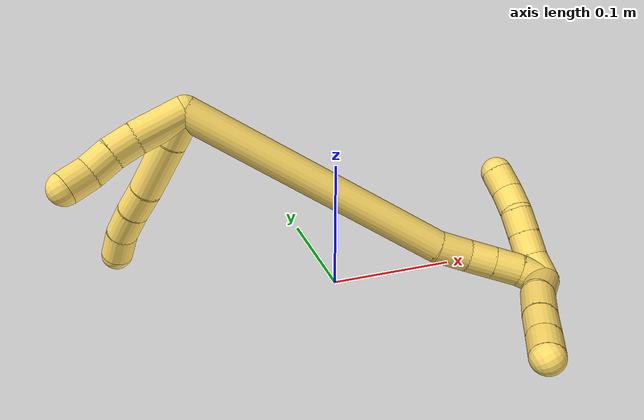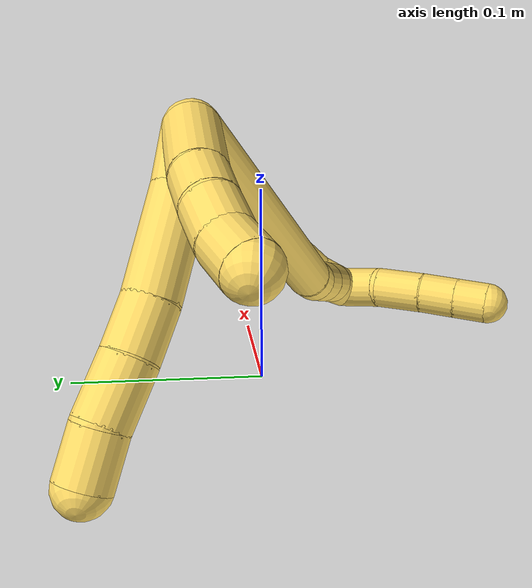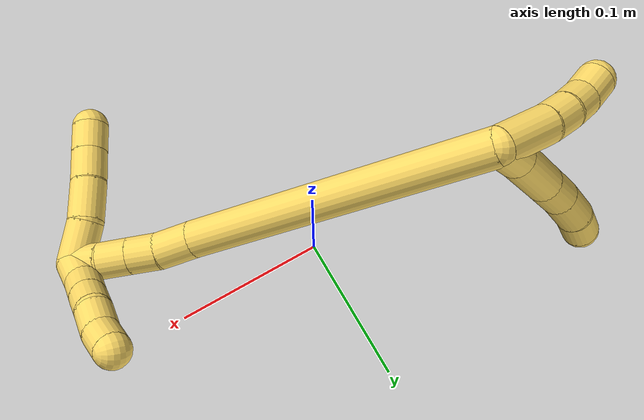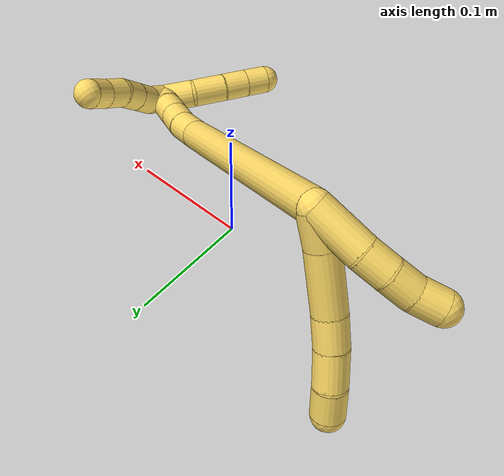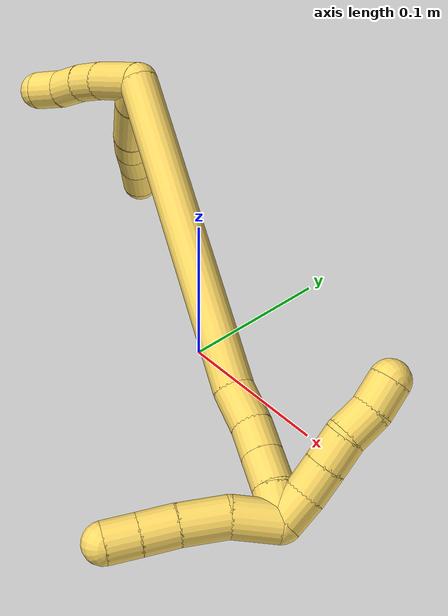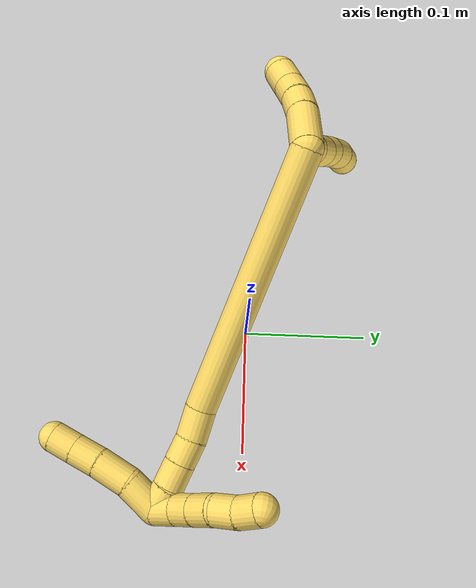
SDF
<sdf version="1.7">
 <world name="default">
  <model name="photoneo_s_sensor">
   <static>1</static>
   <pose>0 0 2 1.57079 1.57079 3.14159</pose>
   <link name="link">
    <inertial><mass>0.1</mass></inertial>
    <sensor name="sensor" type="depth">
     <update_rate>30</update_rate>
     <camera>
      <horizontal_fov>1.22</horizontal_fov>
      <image><width>1920</width><height>1200</height><format>B8G8R8</format></image>
      <clip><near>0.1</near><far>4</far></clip>
      <depth_camera><output>points</output></depth_camera>
     </camera>
     <plugin name="camera_plugin" filename="libgazebo_ros_depth_camera.so">
      <baseline>0.2</baseline>
      <alwaysOn>1</alwaysOn>
      <updateRate>0.0</updateRate>
      <cameraName>camera_ir</cameraName>
      <imageTopicName>/camera/color/image_raw</imageTopicName>
      <cameraInfoTopicName>/camera/color/camera_info</cameraInfoTopicName>
      <depthImageTopicName>/camera/depth/image_raw</depthImageTopicName>
      <depthImageCameraInfoTopicName>/camera/depth/camera_info</depthImageCameraInfoTopicName>
      <pointCloudTopicName>/camera/depth/points</pointCloudTopicName>
      <frameName>fr_optical</frameName>
      <pointCloudCutoff>0.1</pointCloudCutoff>
      <pointCloudCutoffMax>2.0</pointCloudCutoffMax>
      <distortionK1>0</distortionK1>
      <distortionK2>0</distortionK2>
      <distortionK3>0</distortionK3>
      <distortionT1>0</distortionT1>
      <distortionT2>0</distortionT2>
      <CxPrime>0</CxPrime>
      <Cx>0</Cx>
      <Cy>0</Cy>
      <focalLength>0</focalLength>
      <hackBaseline>0</hackBaseline>
     </plugin>
    </sensor>
   </link>
  </model>
  <model name="bin">
   <static>1</static>
   <link name="bottom">
    <collision name="collision-bottom">
     <pose>0 0 -0.01 0 -0 0</pose>
     <geometry><box><size>0.8 0.6 0.02</size></box></geometry>
     <surface>
      <friction><ode><mu>100</mu><mu2>100</mu2></ode></friction>
      <contact><collide_bitmask>65535</collide_bitmask></contact>
     </surface>
    </collision>
   </link>
   <link name="west_wall">
    <collision name="collision-west_wall">
     <pose>-0.41 0 0.1 0 -0 0</pose>
     <geometry><box><size>0.02 0.6 0.2</size></box></geometry>
     <surface>
      <friction><ode><mu>100</mu><mu2>100</mu2></ode></friction>
      <contact><collide_bitmask>65535</collide_bitmask></contact>
     </surface>
    </collision>
   </link>
   <link name="east_wall">
    <collision name="collision-east_wall">
     <pose>0.41 0 0.1 0 -0 0</pose>
     <geometry><box><size>0.02 0.6 0.2</size></box></geometry>
     <surface>
      <friction><ode><mu>100</mu><mu2>100</mu2></ode></friction>
      <contact><collide_bitmask>65535</collide_bitmask></contact>
     </surface>
    </collision>
   </link>
   <link name="south_wall">
    <collision name="collision-south_wall">
     <pose>0 -0.31 0.1 0 -0 0</pose>
     <geometry><box><size>0.8 0.02 0.2</size></box></geometry>
     <surface>
      <friction><ode><mu>100</mu><mu2>100</mu2></ode></friction>
      <contact><collide_bitmask>65535</collide_bitmask></contact>
     </surface>
    </collision>
   </link>
   <link name="north_wall">
    <collision name="collision-north_wall">
     <pose>0 0.31 0.1 0 -0 0</pose>
     <geometry><box><size>0.8 0.02 0.2</size></box></geometry>
     <surface>
      <friction><ode><mu>100</mu><mu2>100</mu2></ode></friction>
      <contact><collide_bitmask>65535</collide_bitmask></contact>
     </surface>
    </collision>
   </link>
  </model>
  <model name="5">
   <static>0</static>
   <link name="5">
    <collision name="collision-cylinder-e_1_2_8">
     <pose>0.006565 0.002974 -0.011233 -2.8828 0.514284 -2.22257</pose>
     <geometry><cylinder><radius>0.0125</radius><length>0.026692</length></cylinder></geometry>
     <surface>
      <friction><ode><mu>1.16</mu><mu2>1.16</mu2><slip1>0</slip1><slip2>0</slip2></ode></friction>
      <contact><ode><kp>1e+06</kp><kd>1</kd><max_vel>0</max_vel><min_depth>0.001</min_depth></ode></contact>
     </surface>
    </collision>
    <visual name="visual-cylinder-e_1_2_8">
     <pose>0.006565 0.002974 -0.011233 -2.8828 0.514284 -2.22257</pose>
     <geometry><cylinder><radius>0.0125</radius><length>0.026692</length></cylinder></geometry>
     <material><ambient>1 0.858824 0.4 1</ambient></material>
    </visual>
    <collision name="collision-cylinder-e_2_8_9">
     <pose>0.02446 0.013088 -0.041926 -2.78993 0.500207 -1.92619</pose>
     <geometry><cylinder><radius>0.0125</radius><length>0.047245</length></cylinder></geometry>
     <surface>
      <friction><ode><mu>1.16</mu><mu2>1.16</mu2><slip1>0</slip1><slip2>0</slip2></ode></friction>
      <contact><ode><kp>1e+06</kp><kd>1</kd><max_vel>0</max_vel><min_depth>0.001</min_depth></ode></contact>
     </surface>
    </collision>
    <visual name="visual-cylinder-e_2_8_9">
     <pose>0.02446 0.013088 -0.041926 -2.78993 0.500207 -1.92619</pose>
     <geometry><cylinder><radius>0.0125</radius><length>0.047245</length></cylinder></geometry>
     <material><ambient>1 0.858824 0.4 1</ambient></material>
    </visual>
    <collision name="collision-cylinder-e_3_9_10">
     <pose>0.040838 0.024798 -0.071389 -2.71307 0.430356 -1.57519</pose>
     <geometry><cylinder><radius>0.0125</radius><length>0.024203</length></cylinder></geometry>
     <surface>
      <friction><ode><mu>1.16</mu><mu2>1.16</mu2><slip1>0</slip1><slip2>0</slip2></ode></friction>
      <contact><ode><kp>1e+06</kp><kd>1</kd><max_vel>0</max_vel><min_depth>0.001</min_depth></ode></contact>
     </surface>
    </collision>
    <visual name="visual-cylinder-e_3_9_10">
     <pose>0.040838 0.024798 -0.071389 -2.71307 0.430356 -1.57519</pose>
     <geometry><cylinder><radius>0.0125</radius><length>0.024203</length></cylinder></geometry>
     <material><ambient>1 0.858824 0.4 1</ambient></material>
    </visual>
    <collision name="collision-cylinder-e_4_10_11">
     <pose>0.052169 0.035597 -0.092289 -2.62223 0.464067 -1.45382</pose>
     <geometry><cylinder><radius>0.0125</radius><length>0.028071</length></cylinder></geometry>
     <surface>
      <friction><ode><mu>1.16</mu><mu2>1.16</mu2><slip1>0</slip1><slip2>0</slip2></ode></friction>
      <contact><ode><kp>1e+06</kp><kd>1</kd><max_vel>0</max_vel><min_depth>0.001</min_depth></ode></contact>
     </surface>
    </collision>
    <visual name="visual-cylinder-e_4_10_11">
     <pose>0.052169 0.035597 -0.092289 -2.62223 0.464067 -1.45382</pose>
     <geometry><cylinder><radius>0.0125</radius><length>0.028071</length></cylinder></geometry>
     <material><ambient>1 0.858824 0.4 1</ambient></material>
    </visual>
    <collision name="collision-cylinder-e_5_11_6">
     <pose>0.065555 0.046489 -0.111507 -2.63092 0.640092 -1.80735</pose>
     <geometry><cylinder><radius>0.0125</radius><length>0.023789</length></cylinder></geometry>
     <surface>
      <friction><ode><mu>1.16</mu><mu2>1.16</mu2><slip1>0</slip1><slip2>0</slip2></ode></friction>
      <contact><ode><kp>1e+06</kp><kd>1</kd><max_vel>0</max_vel><min_depth>0.001</min_depth></ode></contact>
     </surface>
    </collision>
    <visual name="visual-cylinder-e_5_11_6">
     <pose>0.065555 0.046489 -0.111507 -2.63092 0.640092 -1.80735</pose>
     <geometry><cylinder><radius>0.0125</radius><length>0.023789</length></cylinder></geometry>
     <material><ambient>1 0.858824 0.4 1</ambient></material>
    </visual>
    <collision name="collision-cylinder-e_1_2_12">
     <pose>-0.001201 -0.004311 -0.019173 2.92044 -0.061046 -0.536723</pose>
     <geometry><cylinder><radius>0.0125</radius><length>0.039376</length></cylinder></geometry>
     <surface>
      <friction><ode><mu>1.16</mu><mu2>1.16</mu2><slip1>0</slip1><slip2>0</slip2></ode></friction>
      <contact><ode><kp>1e+06</kp><kd>1</kd><max_vel>0</max_vel><min_depth>0.001</min_depth></ode></contact>
     </surface>
    </collision>
    <visual name="visual-cylinder-e_1_2_12">
     <pose>-0.001201 -0.004311 -0.019173 2.92044 -0.061046 -0.536723</pose>
     <geometry><cylinder><radius>0.0125</radius><length>0.039376</length></cylinder></geometry>
     <material><ambient>1 0.858824 0.4 1</ambient></material>
    </visual>
    <collision name="collision-cylinder-e_2_12_13">
     <pose>-0.002191 -0.011852 -0.047995 2.81849 0.020762 0.127226</pose>
     <geometry><cylinder><radius>0.0125</radius><length>0.020357</length></cylinder></geometry>
     <surface>
      <friction><ode><mu>1.16</mu><mu2>1.16</mu2><slip1>0</slip1><slip2>0</slip2></ode></friction>
      <contact><ode><kp>1e+06</kp><kd>1</kd><max_vel>0</max_vel><min_depth>0.001</min_depth></ode></contact>
     </surface>
    </collision>
    <visual name="visual-cylinder-e_2_12_13">
     <pose>-0.002191 -0.011852 -0.047995 2.81849 0.020762 0.127226</pose>
     <geometry><cylinder><radius>0.0125</radius><length>0.020357</length></cylinder></geometry>
     <material><ambient>1 0.858824 0.4 1</ambient></material>
    </visual>
    <collision name="collision-cylinder-e_3_13_14">
     <pose>-0.000424 -0.018725 -0.066905 2.76694 0.155129 0.77824</pose>
     <geometry><cylinder><radius>0.0125</radius><length>0.020142</length></cylinder></geometry>
     <surface>
      <friction><ode><mu>1.16</mu><mu2>1.16</mu2><slip1>0</slip1><slip2>0</slip2></ode></friction>
      <contact><ode><kp>1e+06</kp><kd>1</kd><max_vel>0</max_vel><min_depth>0.001</min_depth></ode></contact>
     </surface>
    </collision>
    <visual name="visual-cylinder-e_3_13_14">
     <pose>-0.000424 -0.018725 -0.066905 2.76694 0.155129 0.77824</pose>
     <geometry><cylinder><radius>0.0125</radius><length>0.020142</length></cylinder></geometry>
     <material><ambient>1 0.858824 0.4 1</ambient></material>
    </visual>
    <collision name="collision-cylinder-e_4_14_5">
     <pose>0.0012 -0.027573 -0.084775 2.59765 0.006753 0.024214</pose>
     <geometry><cylinder><radius>0.0125</radius><length>0.020125</length></cylinder></geometry>
     <surface>
      <friction><ode><mu>1.16</mu><mu2>1.16</mu2><slip1>0</slip1><slip2>0</slip2></ode></friction>
      <contact><ode><kp>1e+06</kp><kd>1</kd><max_vel>0</max_vel><min_depth>0.001</min_depth></ode></contact>
     </surface>
    </collision>
    <visual name="visual-cylinder-e_4_14_5">
     <pose>0.0012 -0.027573 -0.084775 2.59765 0.006753 0.024214</pose>
     <geometry><cylinder><radius>0.0125</radius><length>0.020125</length></cylinder></geometry>
     <material><ambient>1 0.858824 0.4 1</ambient></material>
    </visual>
    <collision name="collision-cylinder-e_1_2_15">
     <pose>0.091143 -0.000939 0.054834 0.017114 1.02912 0.009676</pose>
     <geometry><cylinder><radius>0.0125</radius><length>0.21274</length></cylinder></geometry>
     <surface>
      <friction><ode><mu>1.16</mu><mu2>1.16</mu2><slip1>0</slip1><slip2>0</slip2></ode></friction>
      <contact><ode><kp>1e+06</kp><kd>1</kd><max_vel>0</max_vel><min_depth>0.001</min_depth></ode></contact>
     </surface>
    </collision>
    <visual name="visual-cylinder-e_1_2_15">
     <pose>0.091143 -0.000939 0.054834 0.017114 1.02912 0.009676</pose>
     <geometry><cylinder><radius>0.0125</radius><length>0.21274</length></cylinder></geometry>
     <material><ambient>1 0.858824 0.4 1</ambient></material>
    </visual>
    <collision name="collision-cylinder-e_2_15_16">
     <pose>0.191734 -0.001197 0.1181 -0.080516 0.840605 -0.036001</pose>
     <geometry><cylinder><radius>0.0125</radius><length>0.025365</length></cylinder></geometry>
     <surface>
      <friction><ode><mu>1.16</mu><mu2>1.16</mu2><slip1>0</slip1><slip2>0</slip2></ode></friction>
      <contact><ode><kp>1e+06</kp><kd>1</kd><max_vel>0</max_vel><min_depth>0.001</min_depth></ode></contact>
     </surface>
    </collision>
    <visual name="visual-cylinder-e_2_15_16">
     <pose>0.191734 -0.001197 0.1181 -0.080516 0.840605 -0.036001</pose>
     <geometry><cylinder><radius>0.0125</radius><length>0.025365</length></cylinder></geometry>
     <material><ambient>1 0.858824 0.4 1</ambient></material>
    </visual>
    <collision name="collision-cylinder-e_3_16_17">
     <pose>0.208449 -0.001518 0.133647 0.139853 0.790874 0.058457</pose>
     <geometry><cylinder><radius>0.0125</radius><length>0.020437</length></cylinder></geometry>
     <surface>
      <friction><ode><mu>1.16</mu><mu2>1.16</mu2><slip1>0</slip1><slip2>0</slip2></ode></friction>
      <contact><ode><kp>1e+06</kp><kd>1</kd><max_vel>0</max_vel><min_depth>0.001</min_depth></ode></contact>
     </surface>
    </collision>
    <visual name="visual-cylinder-e_3_16_17">
     <pose>0.208449 -0.001518 0.133647 0.139853 0.790874 0.058457</pose>
     <geometry><cylinder><radius>0.0125</radius><length>0.020437</length></cylinder></geometry>
     <material><ambient>1 0.858824 0.4 1</ambient></material>
    </visual>
    <collision name="collision-cylinder-e_4_17_18">
     <pose>0.223162 -0.003511 0.148104 0.134212 0.788135 0.055877</pose>
     <geometry><cylinder><radius>0.0125</radius><length>0.021009</length></cylinder></geometry>
     <surface>
      <friction><ode><mu>1.16</mu><mu2>1.16</mu2><slip1>0</slip1><slip2>0</slip2></ode></friction>
      <contact><ode><kp>1e+06</kp><kd>1</kd><max_vel>0</max_vel><min_depth>0.001</min_depth></ode></contact>
     </surface>
    </collision>
    <visual name="visual-cylinder-e_4_17_18">
     <pose>0.223162 -0.003511 0.148104 0.134212 0.788135 0.055877</pose>
     <geometry><cylinder><radius>0.0125</radius><length>0.021009</length></cylinder></geometry>
     <material><ambient>1 0.858824 0.4 1</ambient></material>
    </visual>
    <collision name="collision-cylinder-e_5_18_1">
     <pose>0.23863 -0.006118 0.161577 0.257619 0.901731 0.12525</pose>
     <geometry><cylinder><radius>0.0125</radius><length>0.020448</length></cylinder></geometry>
     <surface>
      <friction><ode><mu>1.16</mu><mu2>1.16</mu2><slip1>0</slip1><slip2>0</slip2></ode></friction>
      <contact><ode><kp>1e+06</kp><kd>1</kd><max_vel>0</max_vel><min_depth>0.001</min_depth></ode></contact>
     </surface>
    </collision>
    <visual name="visual-cylinder-e_5_18_1">
     <pose>0.23863 -0.006118 0.161577 0.257619 0.901731 0.12525</pose>
     <geometry><cylinder><radius>0.0125</radius><length>0.020448</length></cylinder></geometry>
     <material><ambient>1 0.858824 0.4 1</ambient></material>
    </visual>
    <collision name="collision-cylinder-e_1_1_19">
     <pose>0.243999 -0.02072 0.161938 1.98899 -0.184384 -0.282623</pose>
     <geometry><cylinder><radius>0.0125</radius><length>0.028912</length></cylinder></geometry>
     <surface>
      <friction><ode><mu>1.16</mu><mu2>1.16</mu2><slip1>0</slip1><slip2>0</slip2></ode></friction>
      <contact><ode><kp>1e+06</kp><kd>1</kd><max_vel>0</max_vel><min_depth>0.001</min_depth></ode></contact>
     </surface>
    </collision>
    <visual name="visual-cylinder-e_1_1_19">
     <pose>0.243999 -0.02072 0.161938 1.98899 -0.184384 -0.282623</pose>
     <geometry><cylinder><radius>0.0125</radius><length>0.028912</length></cylinder></geometry>
     <material><ambient>1 0.858824 0.4 1</ambient></material>
    </visual>
    <collision name="collision-cylinder-e_2_19_20">
     <pose>0.242236 -0.047428 0.151535 1.89633 0.061175 0.085191</pose>
     <geometry><cylinder><radius>0.0125</radius><length>0.029019</length></cylinder></geometry>
     <surface>
      <friction><ode><mu>1.16</mu><mu2>1.16</mu2><slip1>0</slip1><slip2>0</slip2></ode></friction>
      <contact><ode><kp>1e+06</kp><kd>1</kd><max_vel>0</max_vel><min_depth>0.001</min_depth></ode></contact>
     </surface>
    </collision>
    <visual name="visual-cylinder-e_2_19_20">
     <pose>0.242236 -0.047428 0.151535 1.89633 0.061175 0.085191</pose>
     <geometry><cylinder><radius>0.0125</radius><length>0.029019</length></cylinder></geometry>
     <material><ambient>1 0.858824 0.4 1</ambient></material>
    </visual>
    <collision name="collision-cylinder-e_3_20_21">
     <pose>0.244582 -0.071528 0.143692 1.87091 0.133528 0.180873</pose>
     <geometry><cylinder><radius>0.0125</radius><length>0.021922</length></cylinder></geometry>
     <surface>
      <friction><ode><mu>1.16</mu><mu2>1.16</mu2><slip1>0</slip1><slip2>0</slip2></ode></friction>
      <contact><ode><kp>1e+06</kp><kd>1</kd><max_vel>0</max_vel><min_depth>0.001</min_depth></ode></contact>
     </surface>
    </collision>
    <visual name="visual-cylinder-e_3_20_21">
     <pose>0.244582 -0.071528 0.143692 1.87091 0.133528 0.180873</pose>
     <geometry><cylinder><radius>0.0125</radius><length>0.021922</length></cylinder></geometry>
     <material><ambient>1 0.858824 0.4 1</ambient></material>
    </visual>
    <collision name="collision-cylinder-e_4_21_4">
     <pose>0.247309 -0.091434 0.137467 1.87717 0.126138 0.172004</pose>
     <geometry><cylinder><radius>0.0125</radius><length>0.020147</length></cylinder></geometry>
     <surface>
      <friction><ode><mu>1.16</mu><mu2>1.16</mu2><slip1>0</slip1><slip2>0</slip2></ode></friction>
      <contact><ode><kp>1e+06</kp><kd>1</kd><max_vel>0</max_vel><min_depth>0.001</min_depth></ode></contact>
     </surface>
    </collision>
    <visual name="visual-cylinder-e_4_21_4">
     <pose>0.247309 -0.091434 0.137467 1.87717 0.126138 0.172004</pose>
     <geometry><cylinder><radius>0.0125</radius><length>0.020147</length></cylinder></geometry>
     <material><ambient>1 0.858824 0.4 1</ambient></material>
    </visual>
    <collision name="collision-cylinder-e_1_1_22">
     <pose>0.239905 -0.000434 0.168818 -1.42009 -0.740188 0.643806</pose>
     <geometry><cylinder><radius>0.0125</radius><length>0.02</length></cylinder></geometry>
     <surface>
      <friction><ode><mu>1.16</mu><mu2>1.16</mu2><slip1>0</slip1><slip2>0</slip2></ode></friction>
      <contact><ode><kp>1e+06</kp><kd>1</kd><max_vel>0</max_vel><min_depth>0.001</min_depth></ode></contact>
     </surface>
    </collision>
    <visual name="visual-cylinder-e_1_1_22">
     <pose>0.239905 -0.000434 0.168818 -1.42009 -0.740188 0.643806</pose>
     <geometry><cylinder><radius>0.0125</radius><length>0.02</length></cylinder></geometry>
     <material><ambient>1 0.858824 0.4 1</ambient></material>
    </visual>
    <collision name="collision-cylinder-e_2_22_23">
     <pose>0.225303 0.012538 0.172391 -1.16097 -0.904025 0.616587</pose>
     <geometry><cylinder><radius>0.0125</radius><length>0.02</length></cylinder></geometry>
     <surface>
      <friction><ode><mu>1.16</mu><mu2>1.16</mu2><slip1>0</slip1><slip2>0</slip2></ode></friction>
      <contact><ode><kp>1e+06</kp><kd>1</kd><max_vel>0</max_vel><min_depth>0.001</min_depth></ode></contact>
     </surface>
    </collision>
    <visual name="visual-cylinder-e_2_22_23">
     <pose>0.225303 0.012538 0.172391 -1.16097 -0.904025 0.616587</pose>
     <geometry><cylinder><radius>0.0125</radius><length>0.02</length></cylinder></geometry>
     <material><ambient>1 0.858824 0.4 1</ambient></material>
    </visual>
    <collision name="collision-cylinder-e_3_23_24">
     <pose>0.20947 0.023791 0.17715 -1.18056 -0.923024 0.64325</pose>
     <geometry><cylinder><radius>0.0125</radius><length>0.02</length></cylinder></geometry>
     <surface>
      <friction><ode><mu>1.16</mu><mu2>1.16</mu2><slip1>0</slip1><slip2>0</slip2></ode></friction>
      <contact><ode><kp>1e+06</kp><kd>1</kd><max_vel>0</max_vel><min_depth>0.001</min_depth></ode></contact>
     </surface>
    </collision>
    <visual name="visual-cylinder-e_3_23_24">
     <pose>0.20947 0.023791 0.17715 -1.18056 -0.923024 0.64325</pose>
     <geometry><cylinder><radius>0.0125</radius><length>0.02</length></cylinder></geometry>
     <material><ambient>1 0.858824 0.4 1</ambient></material>
    </visual>
    <collision name="collision-cylinder-e_4_24_25">
     <pose>0.195321 0.037063 0.181092 -1.35991 -0.665615 0.545091</pose>
     <geometry><cylinder><radius>0.0125</radius><length>0.02</length></cylinder></geometry>
     <surface>
      <friction><ode><mu>1.16</mu><mu2>1.16</mu2><slip1>0</slip1><slip2>0</slip2></ode></friction>
      <contact><ode><kp>1e+06</kp><kd>1</kd><max_vel>0</max_vel><min_depth>0.001</min_depth></ode></contact>
     </surface>
    </collision>
    <visual name="visual-cylinder-e_4_24_25">
     <pose>0.195321 0.037063 0.181092 -1.35991 -0.665615 0.545091</pose>
     <geometry><cylinder><radius>0.0125</radius><length>0.02</length></cylinder></geometry>
     <material><ambient>1 0.858824 0.4 1</ambient></material>
    </visual>
    <collision name="collision-cylinder-e_5_25_3">
     <pose>0.181306 0.050914 0.183514 -1.44567 -0.900943 0.806471</pose>
     <geometry><cylinder><radius>0.0125</radius><length>0.02</length></cylinder></geometry>
     <surface>
      <friction><ode><mu>1.16</mu><mu2>1.16</mu2><slip1>0</slip1><slip2>0</slip2></ode></friction>
      <contact><ode><kp>1e+06</kp><kd>1</kd><max_vel>0</max_vel><min_depth>0.001</min_depth></ode></contact>
     </surface>
    </collision>
    <visual name="visual-cylinder-e_5_25_3">
     <pose>0.181306 0.050914 0.183514 -1.44567 -0.900943 0.806471</pose>
     <geometry><cylinder><radius>0.0125</radius><length>0.02</length></cylinder></geometry>
     <material><ambient>1 0.858824 0.4 1</ambient></material>
    </visual>
    <collision name="collision-sphere-3">
     <pose>0.173467 0.057074 0.184288 0 -0 0</pose>
     <geometry><sphere><radius>0.0125</radius></sphere></geometry>
     <surface>
      <friction><ode><mu>1.16</mu><mu2>1.16</mu2><slip1>0</slip1><slip2>0</slip2></ode></friction>
      <contact><ode><kp>1e+06</kp><kd>1</kd><max_vel>0</max_vel><min_depth>0.001</min_depth></ode></contact>
     </surface>
    </collision>
    <visual name="visual-sphere-3">
     <pose>0.173467 0.057074 0.184288 0 -0 0</pose>
     <geometry><sphere><radius>0.0125</radius></sphere></geometry>
     <material><ambient>1 0.858824 0.4 1</ambient></material>
    </visual>
    <collision name="collision-sphere-25">
     <pose>0.189145 0.044754 0.182739 0 -0 0</pose>
     <geometry><sphere><radius>0.0125</radius></sphere></geometry>
     <surface>
      <friction><ode><mu>1.16</mu><mu2>1.16</mu2><slip1>0</slip1><slip2>0</slip2></ode></friction>
      <contact><ode><kp>1e+06</kp><kd>1</kd><max_vel>0</max_vel><min_depth>0.001</min_depth></ode></contact>
     </surface>
    </collision>
    <visual name="visual-sphere-25">
     <pose>0.189145 0.044754 0.182739 0 -0 0</pose>
     <geometry><sphere><radius>0.0125</radius></sphere></geometry>
     <material><ambient>1 0.858824 0.4 1</ambient></material>
    </visual>
    <collision name="collision-sphere-24">
     <pose>0.201496 0.029372 0.179446 0 -0 0</pose>
     <geometry><sphere><radius>0.0125</radius></sphere></geometry>
     <surface>
      <friction><ode><mu>1.16</mu><mu2>1.16</mu2><slip1>0</slip1><slip2>0</slip2></ode></friction>
      <contact><ode><kp>1e+06</kp><kd>1</kd><max_vel>0</max_vel><min_depth>0.001</min_depth></ode></contact>
     </surface>
    </collision>
    <visual name="visual-sphere-24">
     <pose>0.201496 0.029372 0.179446 0 -0 0</pose>
     <geometry><sphere><radius>0.0125</radius></sphere></geometry>
     <material><ambient>1 0.858824 0.4 1</ambient></material>
    </visual>
    <collision name="collision-sphere-23">
     <pose>0.217445 0.018211 0.174855 0 -0 0</pose>
     <geometry><sphere><radius>0.0125</radius></sphere></geometry>
     <surface>
      <friction><ode><mu>1.16</mu><mu2>1.16</mu2><slip1>0</slip1><slip2>0</slip2></ode></friction>
      <contact><ode><kp>1e+06</kp><kd>1</kd><max_vel>0</max_vel><min_depth>0.001</min_depth></ode></contact>
     </surface>
    </collision>
    <visual name="visual-sphere-23">
     <pose>0.217445 0.018211 0.174855 0 -0 0</pose>
     <geometry><sphere><radius>0.0125</radius></sphere></geometry>
     <material><ambient>1 0.858824 0.4 1</ambient></material>
    </visual>
    <collision name="collision-sphere-22">
     <pose>0.233161 0.006866 0.169927 0 -0 0</pose>
     <geometry><sphere><radius>0.0125</radius></sphere></geometry>
     <surface>
      <friction><ode><mu>1.16</mu><mu2>1.16</mu2><slip1>0</slip1><slip2>0</slip2></ode></friction>
      <contact><ode><kp>1e+06</kp><kd>1</kd><max_vel>0</max_vel><min_depth>0.001</min_depth></ode></contact>
     </surface>
    </collision>
    <visual name="visual-sphere-22">
     <pose>0.233161 0.006866 0.169927 0 -0 0</pose>
     <geometry><sphere><radius>0.0125</radius></sphere></geometry>
     <material><ambient>1 0.858824 0.4 1</ambient></material>
    </visual>
    <collision name="collision-sphere-4">
     <pose>0.248576 -0.100962 0.134453 0 -0 0</pose>
     <geometry><sphere><radius>0.0125</radius></sphere></geometry>
     <surface>
      <friction><ode><mu>1.16</mu><mu2>1.16</mu2><slip1>0</slip1><slip2>0</slip2></ode></friction>
      <contact><ode><kp>1e+06</kp><kd>1</kd><max_vel>0</max_vel><min_depth>0.001</min_depth></ode></contact>
     </surface>
    </collision>
    <visual name="visual-sphere-4">
     <pose>0.248576 -0.100962 0.134453 0 -0 0</pose>
     <geometry><sphere><radius>0.0125</radius></sphere></geometry>
     <material><ambient>1 0.858824 0.4 1</ambient></material>
    </visual>
    <collision name="collision-sphere-21">
     <pose>0.246042 -0.081906 0.140481 0 -0 0</pose>
     <geometry><sphere><radius>0.0125</radius></sphere></geometry>
     <surface>
      <friction><ode><mu>1.16</mu><mu2>1.16</mu2><slip1>0</slip1><slip2>0</slip2></ode></friction>
      <contact><ode><kp>1e+06</kp><kd>1</kd><max_vel>0</max_vel><min_depth>0.001</min_depth></ode></contact>
     </surface>
    </collision>
    <visual name="visual-sphere-21">
     <pose>0.246042 -0.081906 0.140481 0 -0 0</pose>
     <geometry><sphere><radius>0.0125</radius></sphere></geometry>
     <material><ambient>1 0.858824 0.4 1</ambient></material>
    </visual>
    <collision name="collision-sphere-20">
     <pose>0.243123 -0.06115 0.146904 0 -0 0</pose>
     <geometry><sphere><radius>0.0125</radius></sphere></geometry>
     <surface>
      <friction><ode><mu>1.16</mu><mu2>1.16</mu2><slip1>0</slip1><slip2>0</slip2></ode></friction>
      <contact><ode><kp>1e+06</kp><kd>1</kd><max_vel>0</max_vel><min_depth>0.001</min_depth></ode></contact>
     </surface>
    </collision>
    <visual name="visual-sphere-20">
     <pose>0.243123 -0.06115 0.146904 0 -0 0</pose>
     <geometry><sphere><radius>0.0125</radius></sphere></geometry>
     <material><ambient>1 0.858824 0.4 1</ambient></material>
    </visual>
    <collision name="collision-sphere-6">
     <pose>0.072659 0.051152 -0.11983 0 -0 0</pose>
     <geometry><sphere><radius>0.0125</radius></sphere></geometry>
     <surface>
      <friction><ode><mu>1.16</mu><mu2>1.16</mu2><slip1>0</slip1><slip2>0</slip2></ode></friction>
      <contact><ode><kp>1e+06</kp><kd>1</kd><max_vel>0</max_vel><min_depth>0.001</min_depth></ode></contact>
     </surface>
    </collision>
    <visual name="visual-sphere-6">
     <pose>0.072659 0.051152 -0.11983 0 -0 0</pose>
     <geometry><sphere><radius>0.0125</radius></sphere></geometry>
     <material><ambient>1 0.858824 0.4 1</ambient></material>
    </visual>
    <collision name="collision-sphere-11">
     <pose>0.058451 0.041827 -0.103185 0 -0 0</pose>
     <geometry><sphere><radius>0.0125</radius></sphere></geometry>
     <surface>
      <friction><ode><mu>1.16</mu><mu2>1.16</mu2><slip1>0</slip1><slip2>0</slip2></ode></friction>
      <contact><ode><kp>1e+06</kp><kd>1</kd><max_vel>0</max_vel><min_depth>0.001</min_depth></ode></contact>
     </surface>
    </collision>
    <visual name="visual-sphere-11">
     <pose>0.058451 0.041827 -0.103185 0 -0 0</pose>
     <geometry><sphere><radius>0.0125</radius></sphere></geometry>
     <material><ambient>1 0.858824 0.4 1</ambient></material>
    </visual>
    <collision name="collision-sphere-10">
     <pose>0.045887 0.029368 -0.081393 0 -0 0</pose>
     <geometry><sphere><radius>0.0125</radius></sphere></geometry>
     <surface>
      <friction><ode><mu>1.16</mu><mu2>1.16</mu2><slip1>0</slip1><slip2>0</slip2></ode></friction>
      <contact><ode><kp>1e+06</kp><kd>1</kd><max_vel>0</max_vel><min_depth>0.001</min_depth></ode></contact>
     </surface>
    </collision>
    <visual name="visual-sphere-10">
     <pose>0.045887 0.029368 -0.081393 0 -0 0</pose>
     <geometry><sphere><radius>0.0125</radius></sphere></geometry>
     <material><ambient>1 0.858824 0.4 1</ambient></material>
    </visual>
    <collision name="collision-sphere-9">
     <pose>0.03579 0.020228 -0.061386 0 -0 0</pose>
     <geometry><sphere><radius>0.0125</radius></sphere></geometry>
     <surface>
      <friction><ode><mu>1.16</mu><mu2>1.16</mu2><slip1>0</slip1><slip2>0</slip2></ode></friction>
      <contact><ode><kp>1e+06</kp><kd>1</kd><max_vel>0</max_vel><min_depth>0.001</min_depth></ode></contact>
     </surface>
    </collision>
    <visual name="visual-sphere-9">
     <pose>0.03579 0.020228 -0.061386 0 -0 0</pose>
     <geometry><sphere><radius>0.0125</radius></sphere></geometry>
     <material><ambient>1 0.858824 0.4 1</ambient></material>
    </visual>
    <collision name="collision-sphere-2">
     <geometry><sphere><radius>0.0125</radius></sphere></geometry>
     <surface>
      <friction><ode><mu>1.16</mu><mu2>1.16</mu2><slip1>0</slip1><slip2>0</slip2></ode></friction>
      <contact><ode><kp>1e+06</kp><kd>1</kd><max_vel>0</max_vel><min_depth>0.001</min_depth></ode></contact>
     </surface>
    </collision>
    <visual name="visual-sphere-2">
     <geometry><sphere><radius>0.0125</radius></sphere></geometry>
     <material><ambient>1 0.858824 0.4 1</ambient></material>
    </visual>
    <collision name="collision-sphere-19">
     <pose>0.241349 -0.033706 0.156167 0 -0 0</pose>
     <geometry><sphere><radius>0.0125</radius></sphere></geometry>
     <surface>
      <friction><ode><mu>1.16</mu><mu2>1.16</mu2><slip1>0</slip1><slip2>0</slip2></ode></friction>
      <contact><ode><kp>1e+06</kp><kd>1</kd><max_vel>0</max_vel><min_depth>0.001</min_depth></ode></contact>
     </surface>
    </collision>
    <visual name="visual-sphere-19">
     <pose>0.241349 -0.033706 0.156167 0 -0 0</pose>
     <geometry><sphere><radius>0.0125</radius></sphere></geometry>
     <material><ambient>1 0.858824 0.4 1</ambient></material>
    </visual>
    <collision name="collision-sphere-8">
     <pose>0.01313 0.005947 -0.022466 0 -0 0</pose>
     <geometry><sphere><radius>0.0125</radius></sphere></geometry>
     <surface>
      <friction><ode><mu>1.16</mu><mu2>1.16</mu2><slip1>0</slip1><slip2>0</slip2></ode></friction>
      <contact><ode><kp>1e+06</kp><kd>1</kd><max_vel>0</max_vel><min_depth>0.001</min_depth></ode></contact>
     </surface>
    </collision>
    <visual name="visual-sphere-8">
     <pose>0.01313 0.005947 -0.022466 0 -0 0</pose>
     <geometry><sphere><radius>0.0125</radius></sphere></geometry>
     <material><ambient>1 0.858824 0.4 1</ambient></material>
    </visual>
    <collision name="collision-sphere-12">
     <pose>-0.002402 -0.008621 -0.038345 0 -0 0</pose>
     <geometry><sphere><radius>0.0125</radius></sphere></geometry>
     <surface>
      <friction><ode><mu>1.16</mu><mu2>1.16</mu2><slip1>0</slip1><slip2>0</slip2></ode></friction>
      <contact><ode><kp>1e+06</kp><kd>1</kd><max_vel>0</max_vel><min_depth>0.001</min_depth></ode></contact>
     </surface>
    </collision>
    <visual name="visual-sphere-12">
     <pose>-0.002402 -0.008621 -0.038345 0 -0 0</pose>
     <geometry><sphere><radius>0.0125</radius></sphere></geometry>
     <material><ambient>1 0.858824 0.4 1</ambient></material>
    </visual>
    <collision name="collision-sphere-13">
     <pose>-0.00198 -0.015083 -0.057645 0 -0 0</pose>
     <geometry><sphere><radius>0.0125</radius></sphere></geometry>
     <surface>
      <friction><ode><mu>1.16</mu><mu2>1.16</mu2><slip1>0</slip1><slip2>0</slip2></ode></friction>
      <contact><ode><kp>1e+06</kp><kd>1</kd><max_vel>0</max_vel><min_depth>0.001</min_depth></ode></contact>
     </surface>
    </collision>
    <visual name="visual-sphere-13">
     <pose>-0.00198 -0.015083 -0.057645 0 -0 0</pose>
     <geometry><sphere><radius>0.0125</radius></sphere></geometry>
     <material><ambient>1 0.858824 0.4 1</ambient></material>
    </visual>
    <collision name="collision-sphere-14">
     <pose>0.001132 -0.022366 -0.076165 0 -0 0</pose>
     <geometry><sphere><radius>0.0125</radius></sphere></geometry>
     <surface>
      <friction><ode><mu>1.16</mu><mu2>1.16</mu2><slip1>0</slip1><slip2>0</slip2></ode></friction>
      <contact><ode><kp>1e+06</kp><kd>1</kd><max_vel>0</max_vel><min_depth>0.001</min_depth></ode></contact>
     </surface>
    </collision>
    <visual name="visual-sphere-14">
     <pose>0.001132 -0.022366 -0.076165 0 -0 0</pose>
     <geometry><sphere><radius>0.0125</radius></sphere></geometry>
     <material><ambient>1 0.858824 0.4 1</ambient></material>
    </visual>
    <collision name="collision-sphere-5">
     <pose>0.001268 -0.032781 -0.093385 0 -0 0</pose>
     <geometry><sphere><radius>0.0125</radius></sphere></geometry>
     <surface>
      <friction><ode><mu>1.16</mu><mu2>1.16</mu2><slip1>0</slip1><slip2>0</slip2></ode></friction>
      <contact><ode><kp>1e+06</kp><kd>1</kd><max_vel>0</max_vel><min_depth>0.001</min_depth></ode></contact>
     </surface>
    </collision>
    <visual name="visual-sphere-5">
     <pose>0.001268 -0.032781 -0.093385 0 -0 0</pose>
     <geometry><sphere><radius>0.0125</radius></sphere></geometry>
     <material><ambient>1 0.858824 0.4 1</ambient></material>
    </visual>
    <collision name="collision-sphere-15">
     <pose>0.182285 -0.001877 0.109668 0 -0 0</pose>
     <geometry><sphere><radius>0.0125</radius></sphere></geometry>
     <surface>
      <friction><ode><mu>1.16</mu><mu2>1.16</mu2><slip1>0</slip1><slip2>0</slip2></ode></friction>
      <contact><ode><kp>1e+06</kp><kd>1</kd><max_vel>0</max_vel><min_depth>0.001</min_depth></ode></contact>
     </surface>
    </collision>
    <visual name="visual-sphere-15">
     <pose>0.182285 -0.001877 0.109668 0 -0 0</pose>
     <geometry><sphere><radius>0.0125</radius></sphere></geometry>
     <material><ambient>1 0.858824 0.4 1</ambient></material>
    </visual>
    <collision name="collision-sphere-16">
     <pose>0.201183 -0.000516 0.126532 0 -0 0</pose>
     <geometry><sphere><radius>0.0125</radius></sphere></geometry>
     <surface>
      <friction><ode><mu>1.16</mu><mu2>1.16</mu2><slip1>0</slip1><slip2>0</slip2></ode></friction>
      <contact><ode><kp>1e+06</kp><kd>1</kd><max_vel>0</max_vel><min_depth>0.001</min_depth></ode></contact>
     </surface>
    </collision>
    <visual name="visual-sphere-16">
     <pose>0.201183 -0.000516 0.126532 0 -0 0</pose>
     <geometry><sphere><radius>0.0125</radius></sphere></geometry>
     <material><ambient>1 0.858824 0.4 1</ambient></material>
    </visual>
    <collision name="collision-sphere-17">
     <pose>0.215714 -0.00252 0.140763 0 -0 0</pose>
     <geometry><sphere><radius>0.0125</radius></sphere></geometry>
     <surface>
      <friction><ode><mu>1.16</mu><mu2>1.16</mu2><slip1>0</slip1><slip2>0</slip2></ode></friction>
      <contact><ode><kp>1e+06</kp><kd>1</kd><max_vel>0</max_vel><min_depth>0.001</min_depth></ode></contact>
     </surface>
    </collision>
    <visual name="visual-sphere-17">
     <pose>0.215714 -0.00252 0.140763 0 -0 0</pose>
     <geometry><sphere><radius>0.0125</radius></sphere></geometry>
     <material><ambient>1 0.858824 0.4 1</ambient></material>
    </visual>
    <collision name="collision-sphere-18">
     <pose>0.23061 -0.004502 0.155445 0 -0 0</pose>
     <geometry><sphere><radius>0.0125</radius></sphere></geometry>
     <surface>
      <friction><ode><mu>1.16</mu><mu2>1.16</mu2><slip1>0</slip1><slip2>0</slip2></ode></friction>
      <contact><ode><kp>1e+06</kp><kd>1</kd><max_vel>0</max_vel><min_depth>0.001</min_depth></ode></contact>
     </surface>
    </collision>
    <visual name="visual-sphere-18">
     <pose>0.23061 -0.004502 0.155445 0 -0 0</pose>
     <geometry><sphere><radius>0.0125</radius></sphere></geometry>
     <material><ambient>1 0.858824 0.4 1</ambient></material>
    </visual>
    <collision name="collision-sphere-1">
     <pose>0.24665 -0.007733 0.16771 0 -0 0</pose>
     <geometry><sphere><radius>0.0125</radius></sphere></geometry>
     <surface>
      <friction><ode><mu>1.16</mu><mu2>1.16</mu2><slip1>0</slip1><slip2>0</slip2></ode></friction>
      <contact><ode><kp>1e+06</kp><kd>1</kd><max_vel>0</max_vel><min_depth>0.001</min_depth></ode></contact>
     </surface>
    </collision>
    <visual name="visual-sphere-1">
     <pose>0.24665 -0.007733 0.16771 0 -0 0</pose>
     <geometry><sphere><radius>0.0125</radius></sphere></geometry>
     <material><ambient>1 0.858824 0.4 1</ambient></material>
    </visual>
    <inertial>
     <pose>0.118403 -0.001744 0.056572 0 -0 0</pose>
     <mass>0.75</mass>
     <inertia>
      <ixx>0.000448</ixx>
      <ixy>0</ixy>
      <ixz>0</ixz>
      <iyy>0.000806</iyy>
      <iyz>0</iyz>
      <izz>-0.000701</izz>
     </inertia>
    </inertial>
   </link>
   <pose>-0.10181 0.037302 0.140914 -0.371756 1.02884 -0.598149</pose>
  </model>
 </world>
</sdf>
